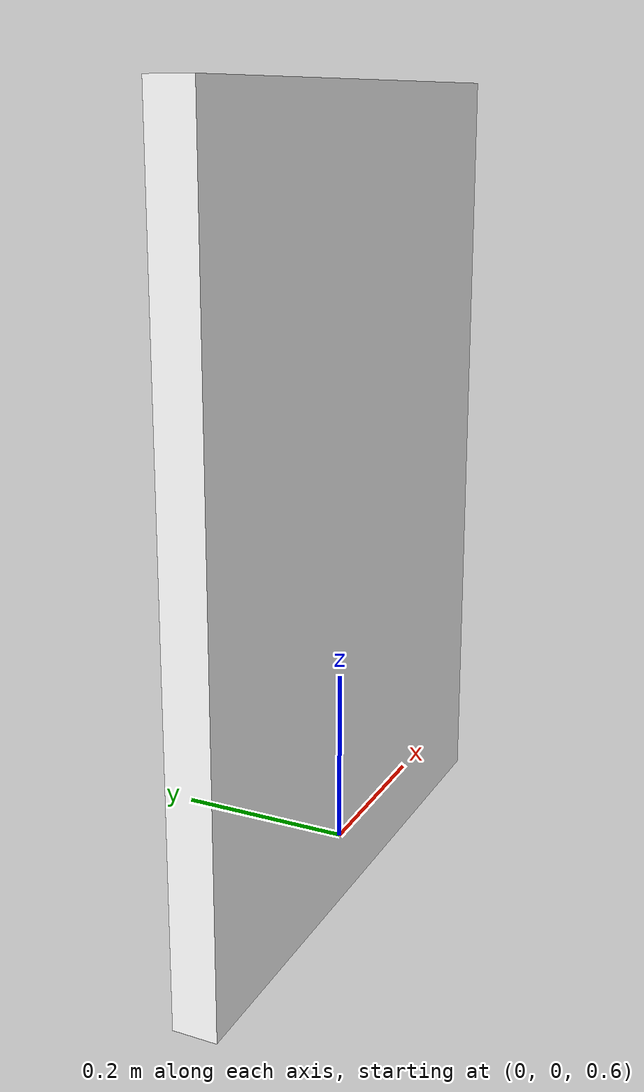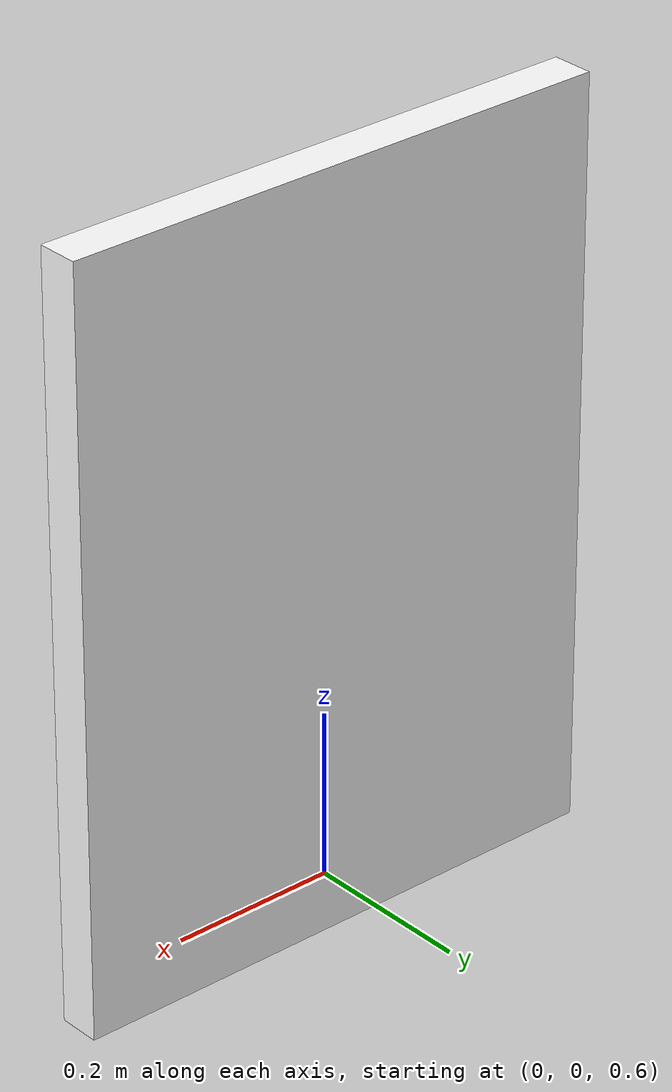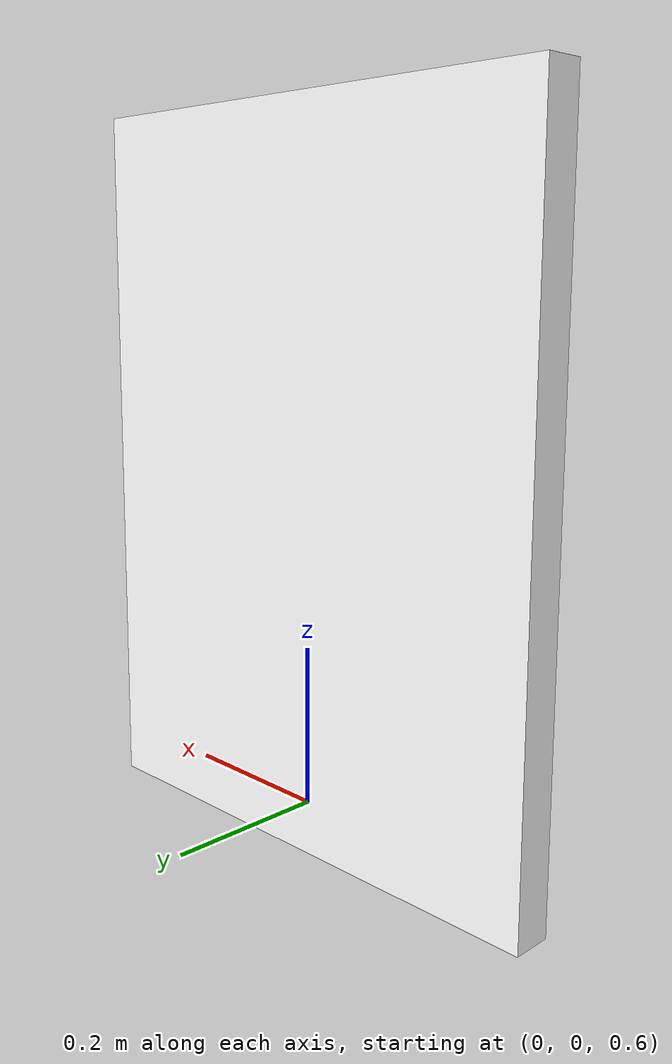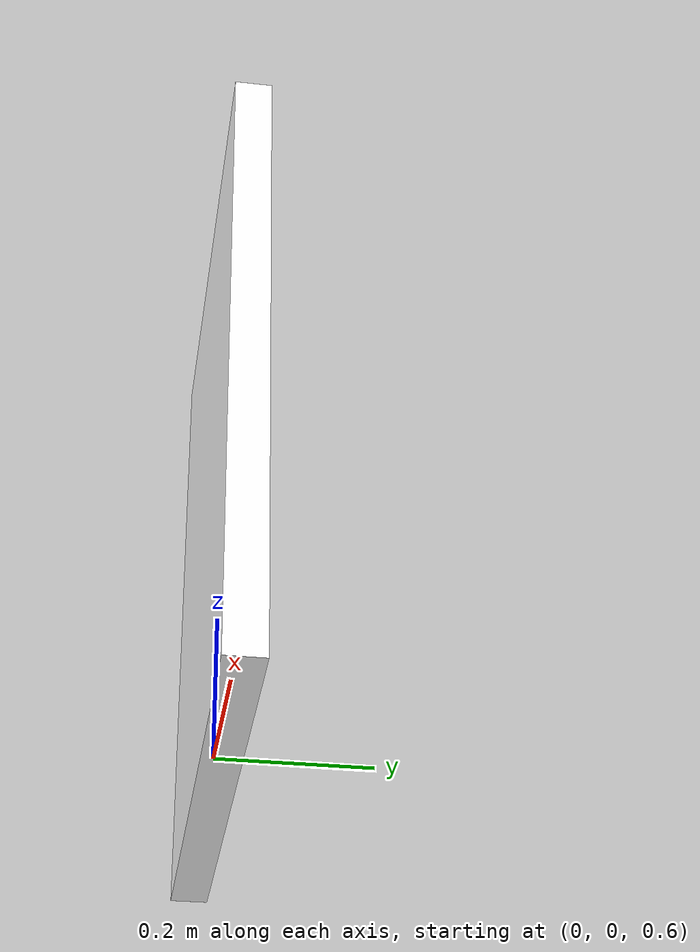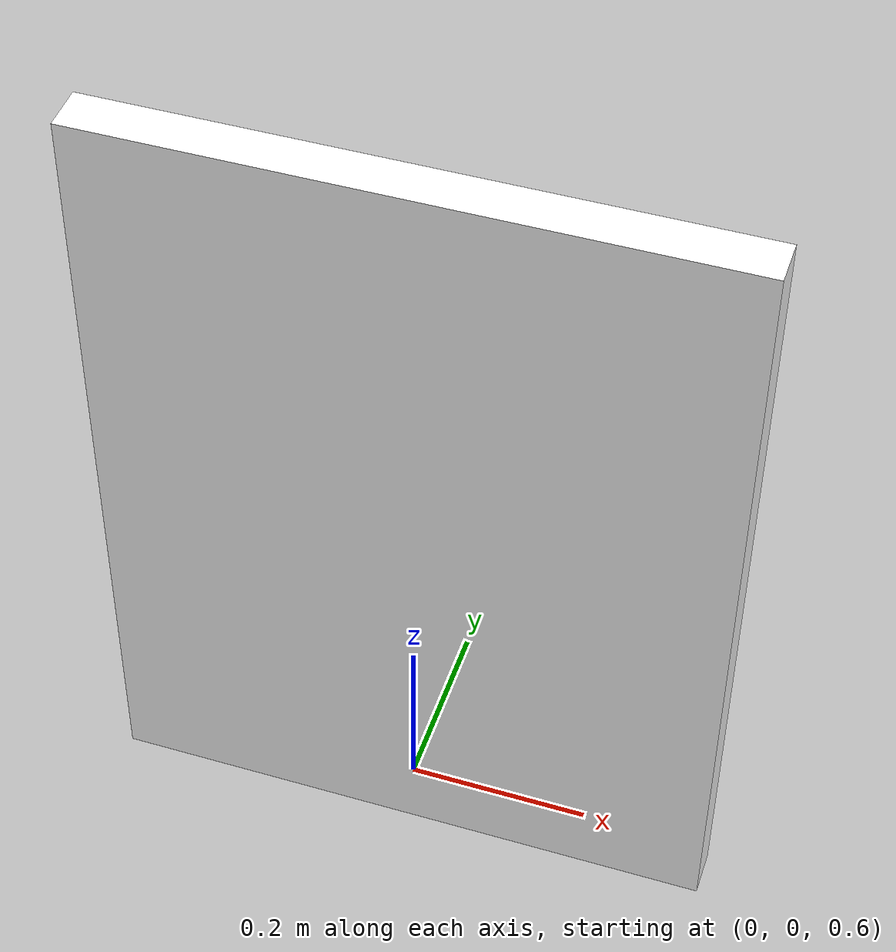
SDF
<sdf version="1.6">
    <model name="textured_wall">
        <static>true</static>
        <pose>0 0 1 0 -1.57 -1.57</pose>
        <link name="wall_link">
            <visual name="wall_visual">
                <geometry>
                    <box>
                        <size>0.9 0.68 0.05</size>                        <!-- 调整尺寸以匹配您的墙壁大小 -->
                    </box>
                </geometry>
                <material>
                    <shader type="pixel"/>
                    <ambient>1 1 1 1</ambient>
                    <diffuse>1 1 1 1</diffuse>
                    <specular>1 1 1 1</specular>
                    <emissive>0 0 0 0</emissive>
                    <pbr>
                        <metal>
                            <albedo_map>file://home/xvshuo/work/scl/gazebo_moviet2/src/calibration/res/calib_board/textures/1.png</albedo_map>
                        </metal>
                    </pbr>
                </material>
            </visual>
        </link>
    </model>
</sdf>
